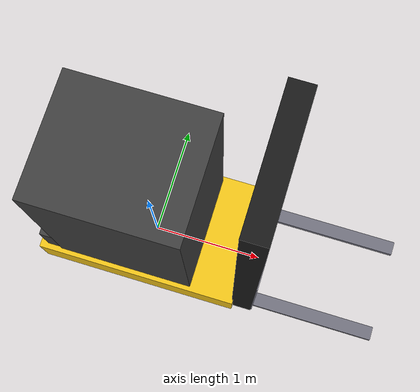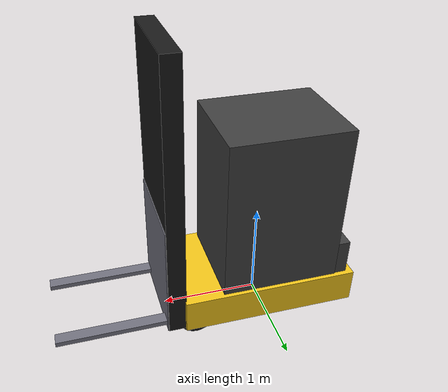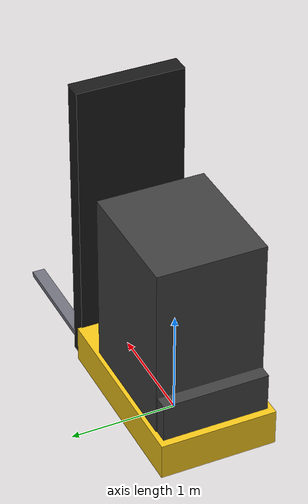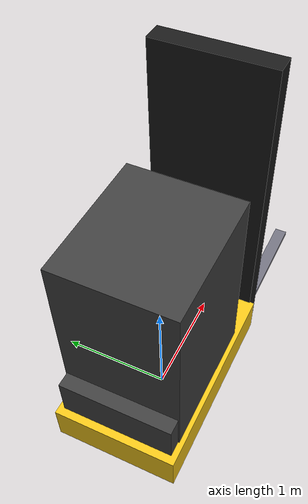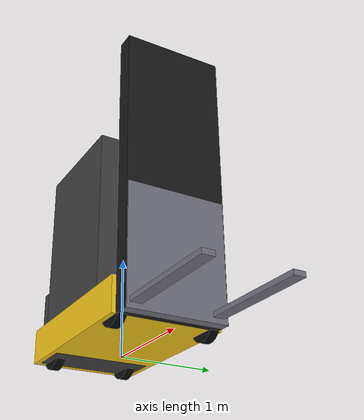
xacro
<?xml version="1.0"?>
<robot xmlns:xacro="http://www.ros.org/wiki/xacro" name="rear_steer_forklift">
  <xacro:include filename="inertial_macros.xacro"/>

  <xacro:property name="wheel_radius" value="0.18"/>
  <xacro:property name="wheel_width" value="0.09"/>
  <xacro:property name="front_axle_x" value="0.78"/>
  <xacro:property name="rear_axle_x" value="-0.72"/>
  <xacro:property name="front_track" value="0.92"/>
  <xacro:property name="rear_track" value="0.78"/>
  <xacro:property name="ground_clearance" value="0.08"/>
  <xacro:property name="body_base_z" value="${ground_clearance}"/>
  <xacro:property name="chassis_length" value="1.80"/>
  <xacro:property name="chassis_width" value="1.10"/>
  <xacro:property name="chassis_height" value="0.35"/>
  <xacro:property name="cabin_length" value="1.20"/>
  <xacro:property name="cabin_width" value="1.02"/>
  <xacro:property name="cabin_height" value="1.65"/>
  <xacro:property name="mast_depth" value="0.18"/>
  <xacro:property name="mast_width" value="1.02"/>
  <xacro:property name="mast_height" value="2.85"/>
  <xacro:property name="carriage_depth" value="0.10"/>
  <xacro:property name="carriage_width" value="1.00"/>
  <xacro:property name="carriage_height" value="1.20"/>
  <xacro:property name="fork_length" value="1.10"/>
  <xacro:property name="fork_width" value="0.12"/>
  <xacro:property name="fork_height" value="0.05"/>
  <xacro:property name="fork_gap" value="0.82"/>
  <xacro:property name="roof_z" value="${body_base_z + chassis_height + cabin_height}"/>
  <xacro:property name="mast_x" value="0.98"/>
  <xacro:property name="rear_steer_link_center_z" value="${wheel_radius + 0.05}"/>
  <xacro:property name="counterweight_length" value="0.42"/>
  <xacro:property name="counterweight_width" value="1.00"/>
  <xacro:property name="counterweight_height" value="0.72"/>
  <xacro:property name="counterweight_x" value="-0.62"/>
  <xacro:property name="counterweight_z" value="${body_base_z + counterweight_height / 2.0}"/>
  <xacro:property name="support_skid_length" value="0.80"/>
  <xacro:property name="support_skid_width" value="0.40"/>
  <xacro:property name="support_skid_height" value="0.02"/>
  <xacro:property name="support_skid_z" value="0.16"/>

  <link name="base_link">
    <visual>
      <origin xyz="0 0 ${body_base_z + chassis_height / 2.0}"/>
      <geometry>
        <box size="${chassis_length} ${chassis_width} ${chassis_height}"/>
      </geometry>
      <material name="yellow">
        <color rgba="0.96 0.78 0.10 1.0"/>
      </material>
    </visual>
    <collision>
      <origin xyz="0 0 ${support_skid_z}"/>
      <geometry>
        <box size="${support_skid_length} ${support_skid_width} ${support_skid_height}"/>
      </geometry>
    </collision>
    <xacro:inertial_box mass="1100.0" x="${chassis_length}" y="${chassis_width}" z="${chassis_height}">
      <origin xyz="0 0 ${body_base_z + chassis_height / 2.0}"/>
    </xacro:inertial_box>
  </link>

  <link name="cabin_link">
    <visual>
      <origin xyz="-0.10 0 ${body_base_z + chassis_height + cabin_height / 2.0}"/>
      <geometry>
        <box size="${cabin_length} ${cabin_width} ${cabin_height}"/>
      </geometry>
      <material name="dark_gray">
        <color rgba="0.25 0.25 0.25 1.0"/>
      </material>
    </visual>
    <xacro:inertial_box mass="280.0" x="${cabin_length}" y="${cabin_width}" z="${cabin_height}">
      <origin xyz="-0.10 0 ${body_base_z + chassis_height + cabin_height / 2.0}"/>
    </xacro:inertial_box>
  </link>

  <joint name="chassis_to_cabin" type="fixed">
    <parent link="base_link"/>
    <child link="cabin_link"/>
    <origin xyz="0 0 0"/>
  </joint>

  <link name="counterweight_link">
    <visual>
      <origin xyz="${counterweight_x} 0 ${counterweight_z}"/>
      <geometry>
        <box size="${counterweight_length} ${counterweight_width} ${counterweight_height}"/>
      </geometry>
      <material name="dark_gray"/>
    </visual>
    <xacro:inertial_box
      mass="680.0"
      x="${counterweight_length}"
      y="${counterweight_width}"
      z="${counterweight_height}">
      <origin xyz="${counterweight_x} 0 ${counterweight_z}"/>
    </xacro:inertial_box>
  </link>

  <joint name="chassis_to_counterweight" type="fixed">
    <parent link="base_link"/>
    <child link="counterweight_link"/>
    <origin xyz="0 0 0"/>
  </joint>

  <link name="mast_link">
    <visual>
      <origin xyz="${mast_x} 0 ${body_base_z + mast_height / 2.0}"/>
      <geometry>
        <box size="${mast_depth} ${mast_width} ${mast_height}"/>
      </geometry>
      <material name="black">
        <color rgba="0.1 0.1 0.1 1.0"/>
      </material>
    </visual>
    <xacro:inertial_box mass="230.0" x="${mast_depth}" y="${mast_width}" z="${mast_height}">
      <origin xyz="${mast_x} 0 ${body_base_z + mast_height / 2.0}"/>
    </xacro:inertial_box>
  </link>

  <joint name="chassis_to_mast" type="fixed">
    <parent link="base_link"/>
    <child link="mast_link"/>
    <origin xyz="0 0 0"/>
  </joint>

  <link name="fork_base_link">
    <visual>
      <origin xyz="${mast_x + carriage_depth / 2.0} 0 ${body_base_z + carriage_height / 2.0}"/>
      <geometry>
        <box size="${carriage_depth} ${carriage_width} ${carriage_height}"/>
      </geometry>
      <material name="steel">
        <color rgba="0.45 0.45 0.50 1.0"/>
      </material>
    </visual>
    <xacro:inertial_box mass="120.0" x="${carriage_depth}" y="${carriage_width}" z="${carriage_height}">
      <origin xyz="${mast_x + carriage_depth / 2.0} 0 ${body_base_z + carriage_height / 2.0}"/>
    </xacro:inertial_box>
  </link>

  <joint name="fork_base_joint" type="prismatic">
    <parent link="mast_link"/>
    <child link="fork_base_link"/>
    <origin xyz="0 0 0"/>
    <axis xyz="0 0 1"/>
    <limit lower="0.0" upper="1.20" effort="2500.0" velocity="0.35"/>
    <dynamics damping="80.0" friction="10.0"/>
  </joint>

  <link name="left_fork_link">
    <visual>
      <origin xyz="${mast_x + carriage_depth + fork_length / 2.0} ${fork_gap / 2.0} ${body_base_z + 0.08}"/>
      <geometry>
        <box size="${fork_length} ${fork_width} ${fork_height}"/>
      </geometry>
      <material name="steel"/>
    </visual>
    <xacro:inertial_box mass="18.0" x="${fork_length}" y="${fork_width}" z="${fork_height}">
      <origin xyz="${mast_x + carriage_depth + fork_length / 2.0} ${fork_gap / 2.0} ${body_base_z + 0.08}"/>
    </xacro:inertial_box>
  </link>

  <joint name="left_fork_joint" type="fixed">
    <parent link="fork_base_link"/>
    <child link="left_fork_link"/>
    <origin xyz="0 0 0"/>
  </joint>

  <link name="right_fork_link">
    <visual>
      <origin xyz="${mast_x + carriage_depth + fork_length / 2.0} -${fork_gap / 2.0} ${body_base_z + 0.08}"/>
      <geometry>
        <box size="${fork_length} ${fork_width} ${fork_height}"/>
      </geometry>
      <material name="steel"/>
    </visual>
    <xacro:inertial_box mass="18.0" x="${fork_length}" y="${fork_width}" z="${fork_height}">
      <origin xyz="${mast_x + carriage_depth + fork_length / 2.0} -${fork_gap / 2.0} ${body_base_z + 0.08}"/>
    </xacro:inertial_box>
  </link>

  <joint name="right_fork_joint" type="fixed">
    <parent link="fork_base_link"/>
    <child link="right_fork_link"/>
    <origin xyz="0 0 0"/>
  </joint>

  <link name="front_left_wheel_link">
    <visual>
      <origin xyz="0 0 0" rpy="1.57079632679 0 0"/>
      <geometry>
        <cylinder radius="${wheel_radius}" length="${wheel_width}"/>
      </geometry>
      <material name="wheel_black">
        <color rgba="0.05 0.05 0.05 1.0"/>
      </material>
    </visual>
    <collision>
      <origin xyz="0 0 0" rpy="1.57079632679 0 0"/>
      <geometry>
        <cylinder radius="${wheel_radius}" length="${wheel_width}"/>
      </geometry>
    </collision>
    <xacro:inertial_cylinder mass="38.0" length="${wheel_width}" radius="${wheel_radius}">
      <origin xyz="0 0 0" rpy="1.57079632679 0 0"/>
    </xacro:inertial_cylinder>
  </link>

  <joint name="front_left_wheel_joint" type="continuous">
    <parent link="base_link"/>
    <child link="front_left_wheel_link"/>
    <origin xyz="${front_axle_x} ${front_track / 2.0} ${wheel_radius}" rpy="0 0 0"/>
    <axis xyz="0 1 0"/>
    <dynamics damping="0.40" friction="0.05"/>
  </joint>

  <link name="front_right_wheel_link">
    <visual>
      <origin xyz="0 0 0" rpy="1.57079632679 0 0"/>
      <geometry>
        <cylinder radius="${wheel_radius}" length="${wheel_width}"/>
      </geometry>
      <material name="wheel_black"/>
    </visual>
    <collision>
      <origin xyz="0 0 0" rpy="1.57079632679 0 0"/>
      <geometry>
        <cylinder radius="${wheel_radius}" length="${wheel_width}"/>
      </geometry>
    </collision>
    <xacro:inertial_cylinder mass="38.0" length="${wheel_width}" radius="${wheel_radius}">
      <origin xyz="0 0 0" rpy="1.57079632679 0 0"/>
    </xacro:inertial_cylinder>
  </link>

  <joint name="front_right_wheel_joint" type="continuous">
    <parent link="base_link"/>
    <child link="front_right_wheel_link"/>
    <origin xyz="${front_axle_x} -${front_track / 2.0} ${wheel_radius}" rpy="0 0 0"/>
    <axis xyz="0 1 0"/>
    <dynamics damping="0.40" friction="0.05"/>
  </joint>

  <link name="rear_left_steer_link">
    <visual>
      <origin xyz="0 0 ${rear_steer_link_center_z}"/>
      <geometry>
        <box size="0.10 0.08 0.24"/>
      </geometry>
      <material name="steel"/>
    </visual>
    <xacro:inertial_box mass="18.0" x="0.10" y="0.08" z="0.24">
      <origin xyz="0 0 ${rear_steer_link_center_z}"/>
    </xacro:inertial_box>
  </link>

  <joint name="rear_left_steering_joint" type="revolute">
    <parent link="base_link"/>
    <child link="rear_left_steer_link"/>
    <origin xyz="${rear_axle_x} ${rear_track / 2.0} 0.0"/>
    <axis xyz="0 0 1"/>
    <limit lower="-0.60" upper="0.60" effort="3200.0" velocity="1.2"/>
    <dynamics damping="12.0" friction="0.4"/>
  </joint>

  <link name="rear_left_wheel_link">
    <visual>
      <origin xyz="0 0 0" rpy="1.57079632679 0 0"/>
      <geometry>
        <cylinder radius="${wheel_radius}" length="${wheel_width}"/>
      </geometry>
      <material name="wheel_black"/>
    </visual>
    <collision>
      <origin xyz="0 0 0" rpy="1.57079632679 0 0"/>
      <geometry>
        <cylinder radius="${wheel_radius}" length="${wheel_width}"/>
      </geometry>
    </collision>
    <xacro:inertial_cylinder mass="42.0" length="${wheel_width}" radius="${wheel_radius}">
      <origin xyz="0 0 0" rpy="1.57079632679 0 0"/>
    </xacro:inertial_cylinder>
  </link>

  <joint name="rear_left_wheel_spin_joint" type="continuous">
    <parent link="rear_left_steer_link"/>
    <child link="rear_left_wheel_link"/>
    <origin xyz="0 0 ${wheel_radius}" rpy="0 0 0"/>
    <axis xyz="0 1 0"/>
    <dynamics damping="0.45" friction="0.05"/>
  </joint>

  <link name="rear_right_steer_link">
    <visual>
      <origin xyz="0 0 ${rear_steer_link_center_z}"/>
      <geometry>
        <box size="0.10 0.08 0.24"/>
      </geometry>
      <material name="steel"/>
    </visual>
    <xacro:inertial_box mass="18.0" x="0.10" y="0.08" z="0.24">
      <origin xyz="0 0 ${rear_steer_link_center_z}"/>
    </xacro:inertial_box>
  </link>

  <joint name="rear_right_steering_joint" type="revolute">
    <parent link="base_link"/>
    <child link="rear_right_steer_link"/>
    <origin xyz="${rear_axle_x} -${rear_track / 2.0} 0.0"/>
    <axis xyz="0 0 1"/>
    <limit lower="-0.60" upper="0.60" effort="3200.0" velocity="1.2"/>
    <dynamics damping="12.0" friction="0.4"/>
  </joint>

  <link name="rear_right_wheel_link">
    <visual>
      <origin xyz="0 0 0" rpy="1.57079632679 0 0"/>
      <geometry>
        <cylinder radius="${wheel_radius}" length="${wheel_width}"/>
      </geometry>
      <material name="wheel_black"/>
    </visual>
    <collision>
      <origin xyz="0 0 0" rpy="1.57079632679 0 0"/>
      <geometry>
        <cylinder radius="${wheel_radius}" length="${wheel_width}"/>
      </geometry>
    </collision>
    <xacro:inertial_cylinder mass="42.0" length="${wheel_width}" radius="${wheel_radius}">
      <origin xyz="0 0 0" rpy="1.57079632679 0 0"/>
    </xacro:inertial_cylinder>
  </link>

  <joint name="rear_right_wheel_spin_joint" type="continuous">
    <parent link="rear_right_steer_link"/>
    <child link="rear_right_wheel_link"/>
    <origin xyz="0 0 ${wheel_radius}" rpy="0 0 0"/>
    <axis xyz="0 1 0"/>
    <dynamics damping="0.45" friction="0.05"/>
  </joint>

  <link name="imu_link"/>
  <joint name="imu_joint" type="fixed">
    <parent link="base_link"/>
    <child link="imu_link"/>
    <origin xyz="0.0 0.0 ${body_base_z + chassis_height + 0.15}"/>
  </joint>

  <link name="laser_frame_link">
    <visual>
      <geometry>
        <cylinder radius="0.05" length="0.06"/>
      </geometry>
      <material name="steel"/>
    </visual>
    <collision>
      <geometry>
        <cylinder radius="0.05" length="0.06"/>
      </geometry>
    </collision>
    <xacro:inertial_cylinder mass="0.5" length="0.06" radius="0.05">
      <origin xyz="0 0 0"/>
    </xacro:inertial_cylinder>
  </link>

  <joint name="laser_joint" type="fixed">
    <parent link="cabin_link"/>
    <child link="laser_frame_link"/>
    <origin xyz="0.05 0.0 ${roof_z - 0.10}"/>
  </joint>

  <ros2_control name="GazeboSystem" type="system">
    <hardware>
      <plugin>gazebo_ros2_control/GazeboSystem</plugin>
    </hardware>

    <joint name="front_left_wheel_joint">
      <state_interface name="velocity"/>
      <state_interface name="position"/>
    </joint>

    <joint name="front_right_wheel_joint">
      <state_interface name="velocity"/>
      <state_interface name="position"/>
    </joint>

    <joint name="rear_left_wheel_spin_joint">
      <command_interface name="velocity"/>
      <state_interface name="velocity"/>
      <state_interface name="position"/>
    </joint>

    <joint name="rear_right_wheel_spin_joint">
      <command_interface name="velocity"/>
      <state_interface name="velocity"/>
      <state_interface name="position"/>
    </joint>

    <joint name="rear_left_steering_joint">
      <command_interface name="position"/>
      <state_interface name="position"/>
      <state_interface name="velocity"/>
    </joint>

    <joint name="rear_right_steering_joint">
      <command_interface name="position"/>
      <state_interface name="position"/>
      <state_interface name="velocity"/>
    </joint>

    <joint name="fork_base_joint">
      <command_interface name="position"/>
      <state_interface name="position"/>
      <state_interface name="velocity"/>
    </joint>
  </ros2_control>

  <gazebo>
    <plugin name="gazebo_ros2_control" filename="libgazebo_ros2_control.so">
      <robot_param>robot_description</robot_param>
      <robot_param_node>robot_state_publisher</robot_param_node>
      <parameters>$(find forklift_description_realistic)/config/rear_steer_controller.yaml</parameters>
    </plugin>
  </gazebo>

  <gazebo reference="front_left_wheel_link">
    <mu1 value="0.08"/>
    <mu2 value="0.12"/>
    <kp value="1000000000.0"/>
    <kd value="1000.0"/>
    <slip1 value="0.35"/>
    <slip2 value="0.35"/>
  </gazebo>

  <gazebo reference="front_right_wheel_link">
    <mu1 value="0.08"/>
    <mu2 value="0.12"/>
    <kp value="1000000000.0"/>
    <kd value="1000.0"/>
    <slip1 value="0.35"/>
    <slip2 value="0.35"/>
  </gazebo>

  <gazebo reference="rear_left_wheel_link">
    <mu1 value="1.00"/>
    <mu2 value="1.05"/>
    <kp value="1000000000.0"/>
    <kd value="1000.0"/>
    <slip1 value="0.03"/>
    <slip2 value="0.03"/>
  </gazebo>

  <gazebo reference="rear_right_wheel_link">
    <mu1 value="1.00"/>
    <mu2 value="1.05"/>
    <kp value="1000000000.0"/>
    <kd value="1000.0"/>
    <slip1 value="0.03"/>
    <slip2 value="0.03"/>
  </gazebo>

  <gazebo reference="laser_frame_link">
    <sensor name="laser" type="ray">
      <pose>0 0 0 0 0 0</pose>
      <visualize>true</visualize>
      <update_rate>15</update_rate>
      <ray>
        <scan>
          <horizontal>
            <samples>360</samples>
            <min_angle>-3.14159</min_angle>
            <max_angle>3.14159</max_angle>
          </horizontal>
        </scan>
        <range>
          <min>0.25</min>
          <max>12.0</max>
        </range>
      </ray>
      <plugin name="laser_controller" filename="libgazebo_ros_ray_sensor.so">
        <ros>
          <remapping>~/out:=scan</remapping>
        </ros>
        <output_type>sensor_msgs/LaserScan</output_type>
        <frame_name>laser_frame_link</frame_name>
      </plugin>
    </sensor>
  </gazebo>

  <gazebo reference="imu_link">
    <sensor name="imu_sensor" type="imu">
      <always_on>true</always_on>
      <update_rate>100</update_rate>
      <visualize>false</visualize>
      <imu>
        <angular_velocity>
          <x><noise type="none"/></x>
          <y><noise type="none"/></y>
          <z><noise type="none"/></z>
        </angular_velocity>
        <linear_acceleration>
          <x><noise type="none"/></x>
          <y><noise type="none"/></y>
          <z><noise type="none"/></z>
        </linear_acceleration>
      </imu>
      <plugin name="imu_plugin" filename="libgazebo_ros_imu_sensor.so">
        <ros>
          <remapping>~/out:=imu</remapping>
        </ros>
        <frame_name>imu_link</frame_name>
      </plugin>
    </sensor>
  </gazebo>
</robot>

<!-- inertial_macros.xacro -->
<robot xmlns:xacro="http://www.ros.org/wiki/xacro">
  <xacro:macro name="inertial_box" params="mass x y z *origin">
    <inertial>
      <xacro:insert_block name="origin"/>
      <mass value="${mass}" />
      <inertia
        ixx="${(1.0 / 12.0) * mass * (y * y + z * z)}"
        ixy="0.0"
        ixz="0.0"
        iyy="${(1.0 / 12.0) * mass * (x * x + z * z)}"
        iyz="0.0"
        izz="${(1.0 / 12.0) * mass * (x * x + y * y)}" />
    </inertial>
  </xacro:macro>

  <xacro:macro name="inertial_cylinder" params="mass length radius *origin">
    <inertial>
      <xacro:insert_block name="origin"/>
      <mass value="${mass}" />
      <inertia
        ixx="${(1.0 / 12.0) * mass * (3 * radius * radius + length * length)}"
        ixy="0.0"
        ixz="0.0"
        iyy="${(1.0 / 12.0) * mass * (3 * radius * radius + length * length)}"
        iyz="0.0"
        izz="${0.5 * mass * radius * radius}" />
    </inertial>
  </xacro:macro>
</robot>
